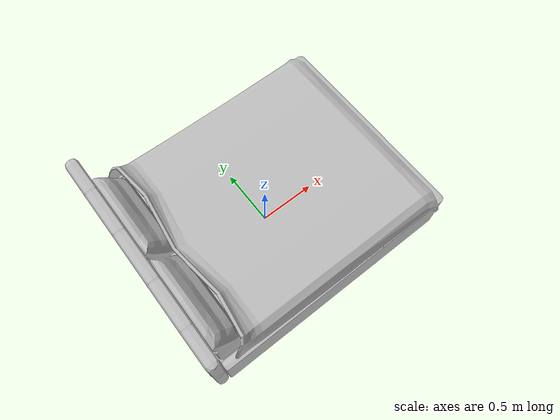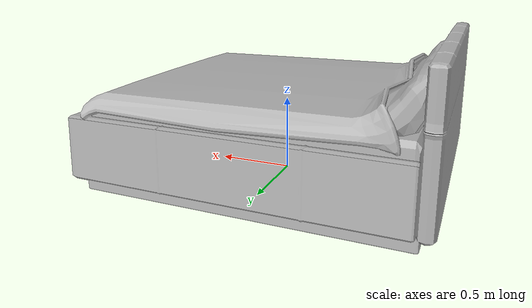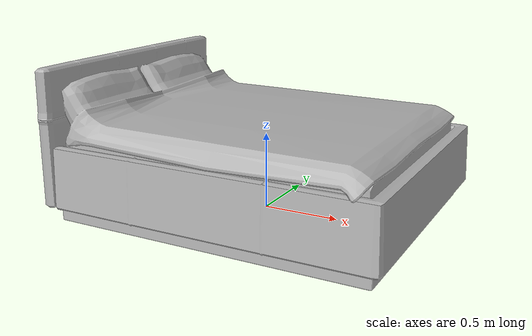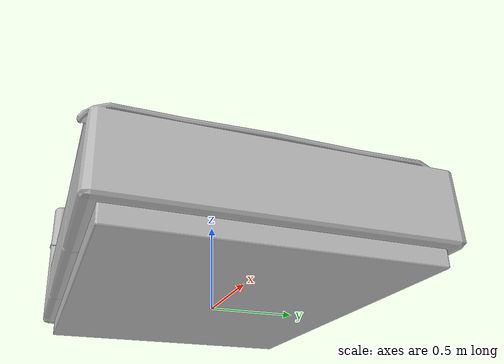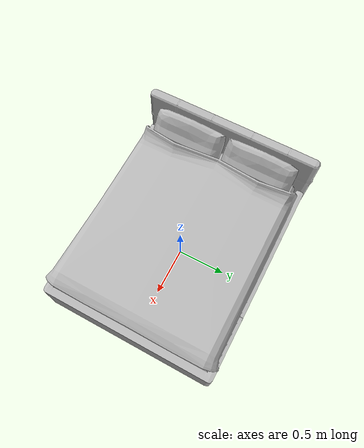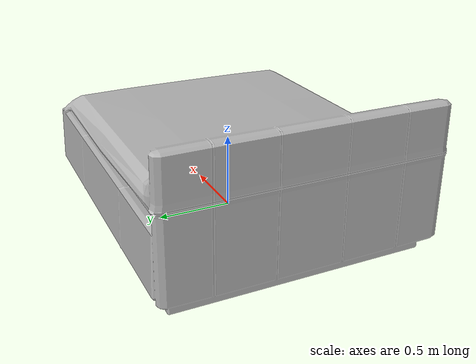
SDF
<?xml version='1.0'?>
<sdf version='1.4'>
  <model name='77'>
    <pose>0 0 0 0 0 0</pose>
    <static>true</static>
    <link name='link'>
      <collision name='collision'>
        <pose>0 0 0 0 0 0</pose>
        <geometry>
          <box>
            <size>2.20332 1.81712 2</size>
          </box>
        </geometry>
      </collision>
      <visual name='visual'>
        <pose>0 0 0 0 0 0</pose>
        <geometry>
          <mesh><uri>model://77/77.dae</uri></mesh>
        </geometry>
      </visual>
    </link>
  </model>
</sdf>
